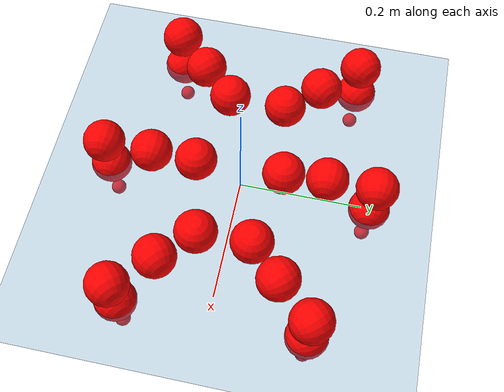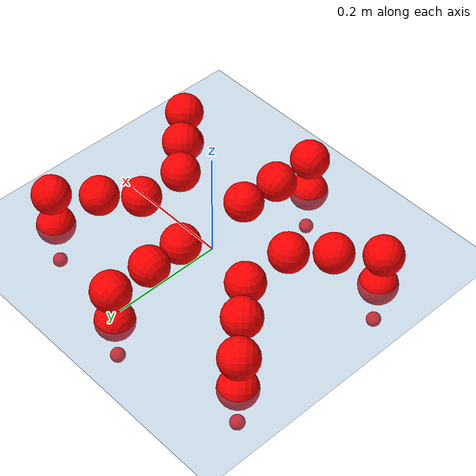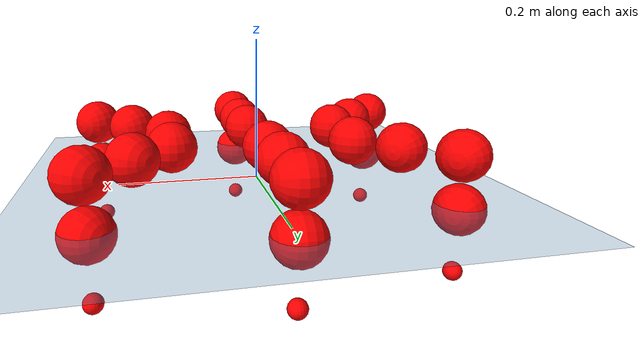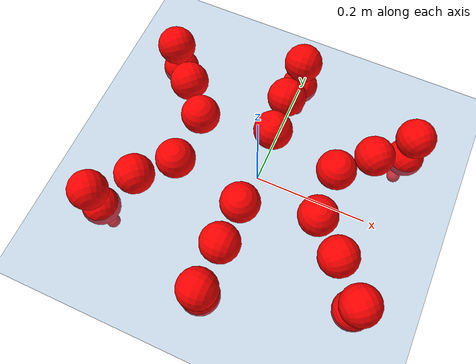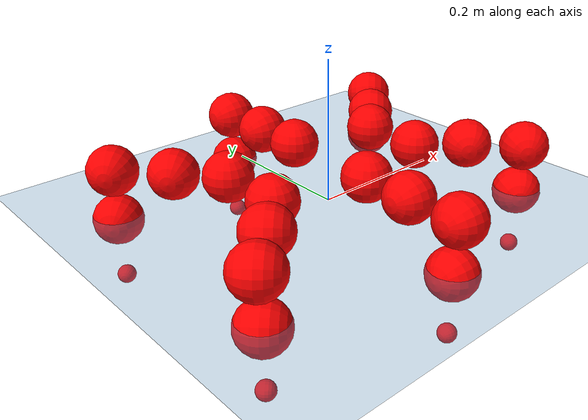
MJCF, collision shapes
<mujoco model="Golem">
  <compiler angle="radian" assetdir="assets" balanceinertia="true" inertiafromgeom="false"/>

  <option timestep="0.005" density="1.2" viscosity="2e-05"/>

  <size nkey="1"/>

  <visual>
    <quality shadowsize="8192"/>
    <map shadowclip="0.5"/>
  </visual>

  <default>
    <default class="/">
      <joint armature="0.01" damping="0.01" frictionloss="0.01"/>
      <geom contype="0" conaffinity="0" group="1" solref="-1000 -80"/>
      <site size="0.01 0.005 0.005" group="5"/>
      <general forcelimited="true" biastype="affine" gainprm="25" biasprm="0 -25 -0.5"/>
      <default class="visual">
        <geom type="mesh" group="2"/>
      </default>
      <default class="collision">
        <geom group="3"/>
      </default>
      <default class="foot">
        <geom size="0.01 0 0" condim="6" group="4" priority="1" solimp="0.015 1 0.01"/>
      </default>
      <default class="reward_collision_sphere">
        <geom group="5" rgba="1 0 0 1"/>
      </default>
    </default>
  </default>

  <asset>
    <texture type="skybox" colorspace="auto" name="//unnamed_texture_0" builtin="gradient" rgb1="0.95 0.95 0.95" rgb2="0.95 0.95 0.95" width="100" height="600"/>
    <texture type="2d" colorspace="auto" name="texplane" builtin="checker" rgb1="0.345 0.575 0.748" rgb2="0.345 0.575 0.748" markrgb="1 1 1" width="512" height="512"/>
    <material name="MatPlane" class="/" texture="texplane" texuniform="true" texrepeat="2 2" specular="0.9"/>
    <mesh name="body" class="/" file="body.stl" scale="0.001 0.001 0.001"/>
    <mesh name="coxa" class="/" file="coxa.stl" scale="0.001 0.001 0.001"/>
    <mesh name="femur" class="/" file="femur.stl" scale="0.001 0.001 0.001"/>
    <mesh name="tibia" class="/" file="tibia.stl" scale="0.001 0.001 0.001"/>
    <mesh name="tarsus" class="/" file="tarsus.stl" scale="0.001 0.001 0.001"/>
  </asset>

  <worldbody>
    <geom name="floor" class="/" size="100 100 0.125" type="plane" group="0" material="MatPlane"/>
    <light name="toplight_shadow" class="/" pos="0 0 5" dir="0.0990148 0.0990148 -0.990148" type="directional" ambient="0.04 0.04 0.04" diffuse="0.55 0.55 0.55" specular="0.12 0.12 0.12"/>
    <light name="toplight_fill" class="/" pos="0 0 5" dir="0.0990148 0.0990148 -0.990148" type="directional" castshadow="false" ambient="0.04 0.04 0.04" diffuse="0.3 0.3 0.3" specular="0.08 0.08 0.08"/>
    <body name="trunk" pos="-0.0010412 0.000151472 -0.00270288" quat="1 -0.000252789 -0.000172488 -7.83946e-05">
      <inertial pos="0.000695803 0.00193953 -0.00535135" quat="0.999999 0.000593584 0.000791081 0.000169279" mass="2.38382" diaginertia="0.00372889 0.00222722 0.0108414"/>
      <joint name="//unnamed_joint_0" type="free"/>
      <geom name="//unnamed_geom_1" class="/" pos="0 0 0.0647628" quat="1 0 0 0" type="mesh" rgba="0.9 0.9 0.9 1" mesh="body"/>
      <site name="imu" class="/" pos="0.103794 -0.000689491 0.113948" size="0.008553"/>
      <camera name="track" class="/" pos="0 -1.47611 0" quat="0.707107 0.707107 0 0" mode="trackcom"/>
      <camera name="ego_camera" class="/" pos="0.10607 0 0.101192" quat="-0.5 -0.5 0.5 0.5"/>
      <body name="coxa_RR" pos="-0.147256 -0.06241 0.0646438" quat="0.383162 0.00104356 0.000552803 -0.92368">
        <inertial pos="-0.00278437 -0.00146148 -8.82242e-05" quat="0.999917 -0.00151284 0.00518384 0.0117258" mass="0.124584" diaginertia="0.00360628 0.00216307 0.0101862"/>
        <joint name="coxa_joint_RR" class="/" pos="0 0 0" axis="0.00062421 0.00496963 -0.999987" stiffness="0.000996436" range="-3.15138 3.11744" armature="0.00879413" damping="0.0123872" frictionloss="0.00966007"/>
        <geom name="//unnamed_geom_2" class="/" type="mesh" rgba="0.2 0.2 0.2 1" mesh="coxa"/>
        <geom name="//unnamed_geom_3" class="reward_collision_sphere" size="0.034212" pos="-0.0244778 0 0"/>
        <body name="femur_RR" pos="0.0482339 0.00182536 -0.000251591" quat="0.499919 -0.500246 0.5 0.499834">
          <inertial pos="9.88625e-05 -0.000304758 0.00265099" quat="1 3.18066e-05 -6.83256e-05 -1.29175e-05" mass="0.125553" diaginertia="0.00361924 0.00220387 0.0102963"/>
          <joint name="femur_joint_RR" class="/" pos="0 0 0" axis="0.00769947 0.00930253 -0.999927" range="-3.15409 3.13934" armature="0.00825818" damping="0" frictionloss="0.00880717"/>
          <geom name="//unnamed_geom_4" class="/" type="mesh" rgba="0.9 0.9 0.9 1" mesh="femur"/>
          <geom name="//unnamed_geom_5" class="reward_collision_sphere" size="0.034212"/>
          <body name="tibia_RR" pos="0.00113917 -0.079657 -0.000830309" quat="5.70896e-05 1 -4.43987e-05 -3.08396e-06">
            <inertial pos="-0.000643841 0.00272312 -0.00270441" quat="0.999915 0.00291321 -0.00385165 -0.012148" mass="0.124038" diaginertia="0.0034656 0.00218239 0.0103606"/>
            <joint name="tibia_joint_RR" class="/" pos="0 0 0" axis="-0.000405391 0.000903774 1" stiffness="0.00199785" range="-3.13784 3.09768" armature="0.00834211" damping="0.00895159" frictionloss="0.00823275"/>
            <geom name="//unnamed_geom_6" class="/" type="mesh" rgba="0.2 0.2 0.2 1" mesh="tibia"/>
            <geom name="//unnamed_geom_7" class="reward_collision_sphere" size="0.034212"/>
            <body name="tarsus_RR" pos="0.072801 -0.00278448 -0.00284087" quat="0.999999 -0.000843417 0.000575266 0.000907778">
              <inertial pos="0.0483156 -0.0023308 0.000165882" quat="0.501047 0.495455 0.50108 0.502389" mass="0.122966" diaginertia="0.00363391 0.00229496 0.0108656"/>
              <joint name="tarsus_joint_RR" class="/" pos="0 0 0" axis="-0.000648156 0.00385401 0.999992" range="-3.13688 3.14619" armature="0.00832973" damping="0" frictionloss="0.00897555"/>
              <geom name="//unnamed_geom_8" class="/" type="mesh" rgba="0.9 0.9 0.9 1" mesh="tarsus"/>
              <geom name="foot_1" class="foot" size="0.00862623" pos="0.0913837 0 0" quat="0 -0.707107 0 0.707107"/>
              <geom name="//unnamed_geom_10" class="reward_collision_sphere" size="0.034212"/>
              <geom name="//unnamed_geom_11" class="reward_collision_sphere" size="0.0128295" pos="0.087712 0 0"/>
              <site name="foot_1" class="foot" pos="0.0913837 0 0" quat="0 -0.707107 0 0.707107" size="0.008553"/>
            </body>
          </body>
        </body>
      </body>
      <body name="coxa_RM" pos="0.00195976 -0.0971324 0.0635809" quat="0.706977 0.000309799 -0.000325348 -0.707236">
        <inertial pos="-0.000135644 -0.00145737 -0.00234872" quat="0.999994 -0.000344072 0.00175691 -0.00309699" mass="0.12162" diaginertia="0.00341872 0.00206033 0.0103171"/>
        <joint name="coxa_joint_RM" class="/" pos="0 0 0" axis="0.000218395 -0.00475099 -0.999989" range="-3.13522 3.15739" armature="0.00835837" damping="0.015821" frictionloss="0.00923675"/>
        <geom name="//unnamed_geom_12" class="/" type="mesh" rgba="0.2 0.2 0.2 1" mesh="coxa"/>
        <geom name="//unnamed_geom_13" class="reward_collision_sphere" size="0.034212" pos="-0.0244778 0 0"/>
        <body name="femur_RM" pos="0.049726 -0.00150795 -0.000823208" quat="0.50003 -0.500522 0.500397 0.49905">
          <inertial pos="0.000986345 -0.00177178 0.00040415" quat="0.999908 0.00420811 0.0101314 -0.00793025" mass="0.123632" diaginertia="0.00372568 0.00217086 0.0105308"/>
          <joint name="femur_joint_RM" class="/" pos="0 0 0" axis="-0.000461506 0.00139674 -0.999999" stiffness="0.00152428" range="-3.1902 3.18977" armature="0.0097052" damping="0.0261603" frictionloss="0.00837189"/>
          <geom name="//unnamed_geom_14" class="/" type="mesh" rgba="0.9 0.9 0.9 1" mesh="femur"/>
          <geom name="//unnamed_geom_15" class="reward_collision_sphere" size="0.034212"/>
          <body name="tibia_RM" pos="-0.00113521 -0.0794615 -0.000638864" quat="-3.74506e-05 1 -9.38401e-05 4.77709e-05">
            <inertial pos="0.000431247 0.00038748 -0.00256679" quat="0.999925 -0.009895 -0.00217019 -0.00688481" mass="0.117134" diaginertia="0.00349679 0.0021239 0.0106194"/>
            <joint name="tibia_joint_RM" class="/" pos="0 0 0" axis="-0.00124392 0.00563674 0.999983" stiffness="0.00658222" range="-3.18898 3.08862" armature="0.00746007" damping="0" frictionloss="0.00871755"/>
            <geom name="//unnamed_geom_16" class="/" type="mesh" rgba="0.2 0.2 0.2 1" mesh="tibia"/>
            <geom name="//unnamed_geom_17" class="reward_collision_sphere" size="0.034212"/>
            <body name="tarsus_RM" pos="0.0718666 -0.00168703 0.00321512" quat="1 -0.000131972 -5.05781e-05 0.000100788">
              <inertial pos="0.0487973 0.00092472 -7.81702e-06" quat="0.497009 0.509355 0.496721 0.496798" mass="0.125118" diaginertia="0.00366742 0.00219535 0.0107586"/>
              <joint name="tarsus_joint_RM" class="/" pos="0 0 0" axis="0.00119014 0.0047302 0.999988" range="-3.14169 3.18925" armature="0.00865851" damping="0" frictionloss="0.00900617"/>
              <geom name="//unnamed_geom_18" class="/" type="mesh" rgba="0.9 0.9 0.9 1" mesh="tarsus"/>
              <geom name="foot_2" class="foot" size="0.00772088" pos="0.0913837 0 0" quat="0 -0.707107 0 0.707107"/>
              <geom name="//unnamed_geom_20" class="reward_collision_sphere" size="0.034212"/>
              <geom name="//unnamed_geom_21" class="reward_collision_sphere" size="0.0128295" pos="0.087712 0 0"/>
              <site name="foot_2" class="foot" pos="0.0913837 0 0" quat="0 -0.707107 0 0.707107" size="0.008553"/>
            </body>
          </body>
        </body>
      </body>
      <body name="coxa_RF" pos="0.143819 -0.0604778 0.0641198" quat="0.923905 -0.000899574 0.00100925 -0.382619">
        <inertial pos="0.00270157 -0.00262182 0.00141008" quat="0.999987 0.00146829 -0.00433798 0.00244207" mass="0.126117" diaginertia="0.00371949 0.00218822 0.0105966"/>
        <joint name="coxa_joint_RF" class="/" pos="0 0 0" axis="0.00593238 -0.00755749 -0.999954" range="-3.13541 3.15941" armature="0.00852387" damping="0" frictionloss="0.00854691"/>
        <geom name="//unnamed_geom_22" class="/" type="mesh" rgba="0.2 0.2 0.2 1" mesh="coxa"/>
        <geom name="//unnamed_geom_23" class="reward_collision_sphere" size="0.034212" pos="-0.0244778 0 0"/>
        <body name="femur_RF" pos="0.0487773 0.00218991 0.00224744" quat="0.499682 -0.499127 0.500872 0.500318">
          <inertial pos="-0.000695578 0.000473568 -0.000307254" quat="0.99998 -0.0015431 0.00028117 -0.00615756" mass="0.124316" diaginertia="0.00359963 0.00215599 0.0105317"/>
          <joint name="femur_joint_RF" class="/" pos="0 0 0" axis="0.00214952 0.00322466 -0.999992" range="-3.12368 3.1608" armature="0.0089816" damping="0.0104561" frictionloss="0.00832935"/>
          <geom name="//unnamed_geom_24" class="/" type="mesh" rgba="0.9 0.9 0.9 1" mesh="femur"/>
          <geom name="//unnamed_geom_25" class="reward_collision_sphere" size="0.034212"/>
          <body name="tibia_RF" pos="0.00167075 -0.0799993 -0.000153923" quat="0.000159567 1 -9.8334e-05 0.000572435">
            <inertial pos="0.000379873 -0.00226731 -0.000162859" quat="0.999999 -0.000767086 0.000259246 -0.000592977" mass="0.121626" diaginertia="0.00351233 0.00210634 0.010611"/>
            <joint name="tibia_joint_RF" class="/" pos="0 0 0" axis="-0.00304912 -0.00231924 0.999993" stiffness="0.00457609" range="-3.13926 3.08744" armature="0.008514" damping="0" frictionloss="0.00855581"/>
            <geom name="//unnamed_geom_26" class="/" type="mesh" rgba="0.2 0.2 0.2 1" mesh="tibia"/>
            <geom name="//unnamed_geom_27" class="reward_collision_sphere" size="0.034212"/>
            <body name="tarsus_RF" pos="0.0693249 -0.00305089 0.000321286" quat="1 0.000580687 -0.000720789 0.000233316">
              <inertial pos="0.0483277 0.000352782 -0.00107421" quat="0.500157 0.500238 0.499466 0.500139" mass="0.127095" diaginertia="0.00363231 0.00226843 0.0106983"/>
              <joint name="tarsus_joint_RF" class="/" pos="0 0 0" axis="-0.00313133 -0.00245605 0.999992" range="-3.15204 3.16017" armature="0.00808452" damping="0" frictionloss="0.00891244"/>
              <geom name="//unnamed_geom_28" class="/" type="mesh" rgba="0.9 0.9 0.9 1" mesh="tarsus"/>
              <geom name="foot_3" class="foot" size="0.00832459" pos="0.0913837 0 0" quat="0 -0.707107 0 0.707107"/>
              <geom name="//unnamed_geom_30" class="reward_collision_sphere" size="0.034212"/>
              <geom name="//unnamed_geom_31" class="reward_collision_sphere" size="0.0128295" pos="0.087712 0 0"/>
              <site name="foot_3" class="foot" pos="0.0913837 0 0" quat="0 -0.707107 0 0.707107" size="0.008553"/>
            </body>
          </body>
        </body>
      </body>
      <body name="coxa_LR" pos="-0.146022 0.0658822 0.062905" quat="0.382663 0.000178026 0.000256173 0.923888">
        <inertial pos="0.000644095 -1.08115e-05 -0.00185059" quat="0.999949 0.00992358 0.00182885 -0.000639788" mass="0.120851" diaginertia="0.00349981 0.00217988 0.0103573"/>
        <joint name="coxa_joint_LR" class="/" pos="0 0 0" axis="-0.00691475 -0.00328685 -0.999971" stiffness="0.00667798" range="-3.14024 3.15781" armature="0.00851947" damping="0.0158708" frictionloss="0.00953248"/>
        <geom name="//unnamed_geom_32" class="/" type="mesh" rgba="0.2 0.2 0.2 1" mesh="coxa"/>
        <geom name="//unnamed_geom_33" class="reward_collision_sphere" size="0.034212" pos="-0.0244778 0 0"/>
        <body name="femur_LR" pos="0.0474681 -0.00363836 0.000440781" quat="0.499482 -0.499654 0.500315 0.500548">
          <inertial pos="-0.00021098 -0.000506183 -0.00285441" quat="0.99999 -1.05792e-06 0.00438921 0.00117675" mass="0.12246" diaginertia="0.00349245 0.00211259 0.0101933"/>
          <joint name="femur_joint_LR" class="/" pos="0 0 0" axis="-0.0116735 0.00601081 0.999914" range="-3.14647 3.13941" armature="0.00921973" damping="0.0117715" frictionloss="0.00888959"/>
          <geom name="//unnamed_geom_34" class="/" type="mesh" rgba="0.9 0.9 0.9 1" mesh="femur"/>
          <geom name="//unnamed_geom_35" class="reward_collision_sphere" size="0.034212"/>
          <body name="tibia_LR" pos="-0.00186762 -0.0809383 -0.0026428" quat="-2.53277e-05 1 -3.53655e-05 1.92097e-05">
            <inertial pos="0.000372928 0.00272977 -0.000146024" quat="0.999986 -0.00308078 0.00411407 -0.000782031" mass="0.127487" diaginertia="0.00355095 0.00221743 0.0111261"/>
            <joint name="tibia_joint_LR" class="/" pos="0 0 0" axis="-0.00916857 -0.00789303 -0.999927" range="-3.09174 3.08803" armature="0.00963595" damping="0" frictionloss="0.00935341"/>
            <geom name="//unnamed_geom_36" class="/" type="mesh" rgba="0.2 0.2 0.2 1" mesh="tibia"/>
            <geom name="//unnamed_geom_37" class="reward_collision_sphere" size="0.034212"/>
            <body name="tarsus_LR" pos="0.0720511 0.00128143 0.000477163" quat="1 -0.000117994 0.000127275 0.000456837">
              <inertial pos="0.05189 0.0012399 -0.00232521" quat="0.500148 0.499817 0.500451 0.499583" mass="0.124209" diaginertia="0.00367657 0.00220393 0.0104119"/>
              <joint name="tarsus_joint_LR" class="/" pos="0 0 0" axis="0.000804257 -0.0045816 -0.999989" range="-3.11066 3.11587" armature="0.00759909" damping="0.0177312" frictionloss="0.00849977"/>
              <geom name="//unnamed_geom_38" class="/" type="mesh" rgba="0.9 0.9 0.9 1" mesh="tarsus"/>
              <geom name="foot_4" class="foot" size="0.00869777" pos="0.0913837 0 0" quat="0.707107 0 -0.707107 0"/>
              <geom name="//unnamed_geom_40" class="reward_collision_sphere" size="0.034212"/>
              <geom name="//unnamed_geom_41" class="reward_collision_sphere" size="0.0128295" pos="0.087712 0 0"/>
              <site name="foot_4" class="foot" pos="0.0913837 0 0" quat="0.707107 0 -0.707107 0" size="0.008553"/>
            </body>
          </body>
        </body>
      </body>
      <body name="coxa_LM" pos="1.60878e-05 0.0937978 0.0663766" quat="0.706864 -6.99617e-06 0.000137471 0.707349">
        <inertial pos="0.000254796 -0.00270282 0.0026148" quat="0.999994 0.00230964 -0.00236305 0.000639125" mass="0.129068" diaginertia="0.00367706 0.00221984 0.0108056"/>
        <joint name="coxa_joint_LM" class="/" pos="0 0 0" axis="-0.007137 -0.0100509 -0.999924" range="-3.14314 3.14578" armature="0.00742166" damping="0.0113361" frictionloss="0.00858959"/>
        <geom name="//unnamed_geom_42" class="/" type="mesh" rgba="0.2 0.2 0.2 1" mesh="coxa"/>
        <geom name="//unnamed_geom_43" class="reward_collision_sphere" size="0.034212" pos="-0.0244778 0 0"/>
        <body name="femur_LM" pos="0.0449768 0.00294165 0.00104461" quat="0.500092 -0.499951 0.500005 0.499951">
          <inertial pos="-0.00267267 0.00124852 -0.00173936" quat="0.999999 0.000860888 0.000695695 -0.000109502" mass="0.121302" diaginertia="0.00352083 0.00214706 0.010126"/>
          <joint name="femur_joint_LM" class="/" pos="0 0 0" axis="0.0153405 -0.00199937 0.99988" stiffness="0.00660253" range="-3.13725 3.1385" armature="0.00895641" damping="0.00214492" frictionloss="0.00955847"/>
          <geom name="//unnamed_geom_44" class="/" type="mesh" rgba="0.9 0.9 0.9 1" mesh="femur"/>
          <geom name="//unnamed_geom_45" class="reward_collision_sphere" size="0.034212"/>
          <body name="tibia_LM" pos="0.000122385 -0.0787221 -0.000632131" quat="0.000219021 1 0.000246335 0.000196791">
            <inertial pos="-0.00119707 -0.000298971 0.0022023" quat="0.999931 -0.00610488 0.00651376 0.00769022" mass="0.12207" diaginertia="0.0036031 0.00221501 0.0103679"/>
            <joint name="tibia_joint_LM" class="/" pos="0 0 0" axis="-0.00242762 0.00389026 -0.999989" stiffness="0.00531648" range="-3.15225 3.19189" armature="0.0079678" damping="0" frictionloss="0.0087084"/>
            <geom name="//unnamed_geom_46" class="/" type="mesh" rgba="0.2 0.2 0.2 1" mesh="tibia"/>
            <geom name="//unnamed_geom_47" class="reward_collision_sphere" size="0.034212"/>
            <body name="tarsus_LM" pos="0.0713536 -0.00297612 -0.000880916" quat="1 -3.02683e-06 8.25003e-06 4.06057e-05">
              <inertial pos="0.0516808 0.00117689 0.000603947" quat="0.499986 0.499748 0.500073 0.500193" mass="0.124671" diaginertia="0.0036614 0.0022118 0.0108684"/>
              <joint name="tarsus_joint_LM" class="/" pos="0 0 0" axis="0.00168742 0.00387274 -0.999991" range="-3.14305 3.12779" armature="0.00876217" damping="0" frictionloss="0.00892548"/>
              <geom name="//unnamed_geom_48" class="/" type="mesh" rgba="0.9 0.9 0.9 1" mesh="tarsus"/>
              <geom name="foot_5" class="foot" size="0.00852252" pos="0.0913837 0 0" quat="0.707107 0 -0.707107 0"/>
              <geom name="//unnamed_geom_50" class="reward_collision_sphere" size="0.034212"/>
              <geom name="//unnamed_geom_51" class="reward_collision_sphere" size="0.0128295" pos="0.087712 0 0"/>
              <site name="foot_5" class="foot" pos="0.0913837 0 0" quat="0.707107 0 -0.707107 0" size="0.008553"/>
            </body>
          </body>
        </body>
      </body>
      <body name="coxa_LF" pos="0.143015 0.0613393 0.0647917" quat="0.924014 0.000425238 -0.000251695 0.382358">
        <inertial pos="0.00249256 -7.90656e-05 -0.00015426" quat="0.999908 0.0132492 0.00239418 -0.00132801" mass="0.126011" diaginertia="0.00373623 0.00216556 0.0106106"/>
        <joint name="coxa_joint_LF" class="/" pos="0 0 0" axis="0.00270913 2.58622e-05 -0.999996" range="-3.1568 3.08551" armature="0.00819275" damping="0.0134704" frictionloss="0.00857367"/>
        <geom name="//unnamed_geom_52" class="/" type="mesh" rgba="0.2 0.2 0.2 1" mesh="coxa"/>
        <geom name="//unnamed_geom_53" class="reward_collision_sphere" size="0.034212" pos="-0.0244778 0 0"/>
        <body name="femur_LF" pos="0.0463749 -0.000442411 -0.00079541" quat="0.500229 -0.49965 0.500158 0.499963">
          <inertial pos="-0.00251854 0.0018933 -0.000645023" quat="1 -0.000223227 -4.24001e-05 0.000392745" mass="0.125925" diaginertia="0.00349876 0.00218736 0.0105922"/>
          <joint name="femur_joint_LF" class="/" pos="0 0 0" axis="-0.00818993 0.0122244 0.999892" range="-3.19328 3.14248" armature="0.00853362" damping="0" frictionloss="0.00853946"/>
          <geom name="//unnamed_geom_54" class="/" type="mesh" rgba="0.9 0.9 0.9 1" mesh="femur"/>
          <geom name="//unnamed_geom_55" class="reward_collision_sphere" size="0.034212"/>
          <body name="tibia_LF" pos="-0.00162551 -0.0797708 0.0029865" quat="-0.000365121 0.999999 -0.000624473 0.000730025">
            <inertial pos="-0.00246499 0.000275472 0.00066703" quat="0.999919 -0.0108651 0.00365145 0.00547943" mass="0.129109" diaginertia="0.00352728 0.0021694 0.0106486"/>
            <joint name="tibia_joint_LF" class="/" pos="0 0 0" axis="-0.00411714 0.000575177 -0.999991" range="-3.13797 3.14602" armature="0.00874259" damping="0.00504524" frictionloss="0.00898328"/>
            <geom name="//unnamed_geom_56" class="/" type="mesh" rgba="0.2 0.2 0.2 1" mesh="tibia"/>
            <geom name="//unnamed_geom_57" class="reward_collision_sphere" size="0.034212"/>
            <body name="tarsus_LF" pos="0.0721967 -0.00210051 0.00107961" quat="1 -0.000172133 -2.66473e-05 0.000274965">
              <inertial pos="0.0480087 0.000304274 -0.00227549" quat="0.49828 0.500225 0.503968 0.497502" mass="0.116968" diaginertia="0.00347443 0.00211818 0.0102275"/>
              <joint name="tarsus_joint_LF" class="/" pos="0 0 0" axis="-0.00155541 -0.0030582 -0.999994" range="-3.12127 3.15671" armature="0.00829382" damping="0.0237152" frictionloss="0.00878653"/>
              <geom name="//unnamed_geom_58" class="/" type="mesh" rgba="0.9 0.9 0.9 1" mesh="tarsus"/>
              <geom name="foot_6" class="foot" size="0.00916879" pos="0.0913837 0 0" quat="0.707107 0 -0.707107 0"/>
              <geom name="//unnamed_geom_60" class="reward_collision_sphere" size="0.034212"/>
              <geom name="//unnamed_geom_61" class="reward_collision_sphere" size="0.0128295" pos="0.087712 0 0"/>
              <site name="foot_6" class="foot" pos="0.0913837 0 0" quat="0.707107 0 -0.707107 0" size="0.008553"/>
            </body>
          </body>
        </body>
      </body>
    </body>
  </worldbody>

  <contact>
    <pair class="/" geom1="floor" geom2="foot_1" name="//unnamed_contact_0"/>
    <pair class="/" geom1="floor" geom2="foot_2" name="//unnamed_contact_1"/>
    <pair class="/" geom1="floor" geom2="foot_3" name="//unnamed_contact_2"/>
    <pair class="/" geom1="floor" geom2="foot_4" name="//unnamed_contact_3"/>
    <pair class="/" geom1="floor" geom2="foot_5" name="//unnamed_contact_4"/>
    <pair class="/" geom1="floor" geom2="foot_6" name="//unnamed_contact_5"/>
  </contact>

  <actuator>
    <general name="coxa_joint_RR" class="/" joint="coxa_joint_RR" forcerange="-6.22919 6.22919" gainprm="20.8509" biasprm="0 -20.8509 -0.46064"/>
    <general name="femur_joint_RR" class="/" joint="femur_joint_RR" forcerange="-6.62034 6.62034" gainprm="20.8509" biasprm="0 -20.8509 -0.46064"/>
    <general name="tibia_joint_RR" class="/" joint="tibia_joint_RR" forcerange="-5.63649 5.63649" gainprm="20.8509" biasprm="0 -20.8509 -0.46064"/>
    <general name="tarsus_joint_RR" class="/" joint="tarsus_joint_RR" forcerange="-6.24236 6.24236" gainprm="20.8509" biasprm="0 -20.8509 -0.46064"/>
    <general name="coxa_joint_RM" class="/" joint="coxa_joint_RM" forcerange="-6.83346 6.83346" gainprm="20.8509" biasprm="0 -20.8509 -0.46064"/>
    <general name="femur_joint_RM" class="/" joint="femur_joint_RM" forcerange="-6.17879 6.17879" gainprm="20.8509" biasprm="0 -20.8509 -0.46064"/>
    <general name="tibia_joint_RM" class="/" joint="tibia_joint_RM" forcerange="-6.27456 6.27456" gainprm="20.8509" biasprm="0 -20.8509 -0.46064"/>
    <general name="tarsus_joint_RM" class="/" joint="tarsus_joint_RM" forcerange="-5.6337 5.6337" gainprm="20.8509" biasprm="0 -20.8509 -0.46064"/>
    <general name="coxa_joint_RF" class="/" joint="coxa_joint_RF" forcerange="-6.81887 6.81887" gainprm="20.8509" biasprm="0 -20.8509 -0.46064"/>
    <general name="femur_joint_RF" class="/" joint="femur_joint_RF" forcerange="-6.20929 6.20929" gainprm="20.8509" biasprm="0 -20.8509 -0.46064"/>
    <general name="tibia_joint_RF" class="/" joint="tibia_joint_RF" forcerange="-6.12544 6.12544" gainprm="20.8509" biasprm="0 -20.8509 -0.46064"/>
    <general name="tarsus_joint_RF" class="/" joint="tarsus_joint_RF" forcerange="-6.22706 6.22706" gainprm="20.8509" biasprm="0 -20.8509 -0.46064"/>
    <general name="coxa_joint_LR" class="/" joint="coxa_joint_LR" forcerange="-6.87734 6.87734" gainprm="20.8509" biasprm="0 -20.8509 -0.46064"/>
    <general name="femur_joint_LR" class="/" joint="femur_joint_LR" forcerange="-6.22161 6.22161" gainprm="20.8509" biasprm="0 -20.8509 -0.46064"/>
    <general name="tibia_joint_LR" class="/" joint="tibia_joint_LR" forcerange="-6.7507 6.7507" gainprm="20.8509" biasprm="0 -20.8509 -0.46064"/>
    <general name="tarsus_joint_LR" class="/" joint="tarsus_joint_LR" forcerange="-6.87719 6.87719" gainprm="20.8509" biasprm="0 -20.8509 -0.46064"/>
    <general name="coxa_joint_LM" class="/" joint="coxa_joint_LM" forcerange="-5.64532 5.64532" gainprm="20.8509" biasprm="0 -20.8509 -0.46064"/>
    <general name="femur_joint_LM" class="/" joint="femur_joint_LM" forcerange="-6.09969 6.09969" gainprm="20.8509" biasprm="0 -20.8509 -0.46064"/>
    <general name="tibia_joint_LM" class="/" joint="tibia_joint_LM" forcerange="-6.87073 6.87073" gainprm="20.8509" biasprm="0 -20.8509 -0.46064"/>
    <general name="tarsus_joint_LM" class="/" joint="tarsus_joint_LM" forcerange="-6.84834 6.84834" gainprm="20.8509" biasprm="0 -20.8509 -0.46064"/>
    <general name="coxa_joint_LF" class="/" joint="coxa_joint_LF" forcerange="-5.75728 5.75728" gainprm="20.8509" biasprm="0 -20.8509 -0.46064"/>
    <general name="femur_joint_LF" class="/" joint="femur_joint_LF" forcerange="-5.78416 5.78416" gainprm="20.8509" biasprm="0 -20.8509 -0.46064"/>
    <general name="tibia_joint_LF" class="/" joint="tibia_joint_LF" forcerange="-6.36571 6.36571" gainprm="20.8509" biasprm="0 -20.8509 -0.46064"/>
    <general name="tarsus_joint_LF" class="/" joint="tarsus_joint_LF" forcerange="-6.10291 6.10291" gainprm="20.8509" biasprm="0 -20.8509 -0.46064"/>
  </actuator>

  <sensor>
    <gyro site="imu" name="imu_angular_velocity"/>
    <velocimeter site="imu" name="imu_linear_velocity"/>
    <framelinvel objtype="site" objname="foot_1" name="foot_1_global_linear_velocity"/>
    <framelinvel objtype="site" objname="foot_2" name="foot_2_global_linear_velocity"/>
    <framelinvel objtype="site" objname="foot_3" name="foot_3_global_linear_velocity"/>
    <framelinvel objtype="site" objname="foot_4" name="foot_4_global_linear_velocity"/>
    <framelinvel objtype="site" objname="foot_5" name="foot_5_global_linear_velocity"/>
    <framelinvel objtype="site" objname="foot_6" name="foot_6_global_linear_velocity"/>
  </sensor>

  <keyframe>
    <key name="home" qpos="0 0 0.1457 1 0 0 0 0 0 0 0 0 0 0 0 0 0 0 0 0 0 0 0 0 0 0 0 0 0 0 0"/>
  </keyframe>
</mujoco>
